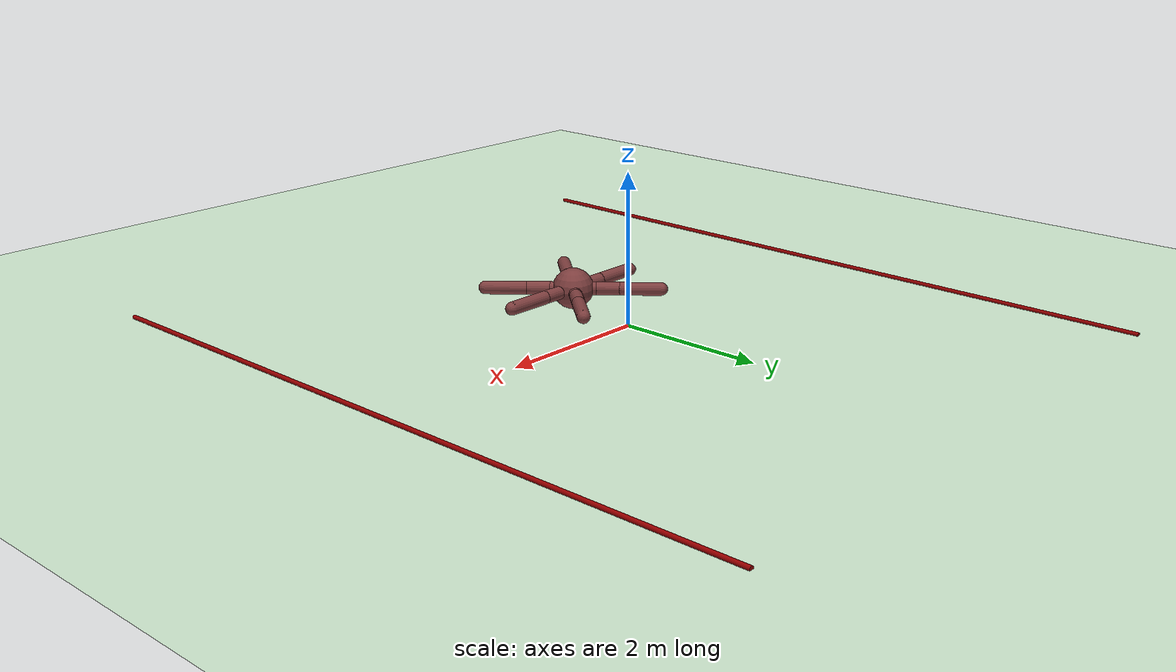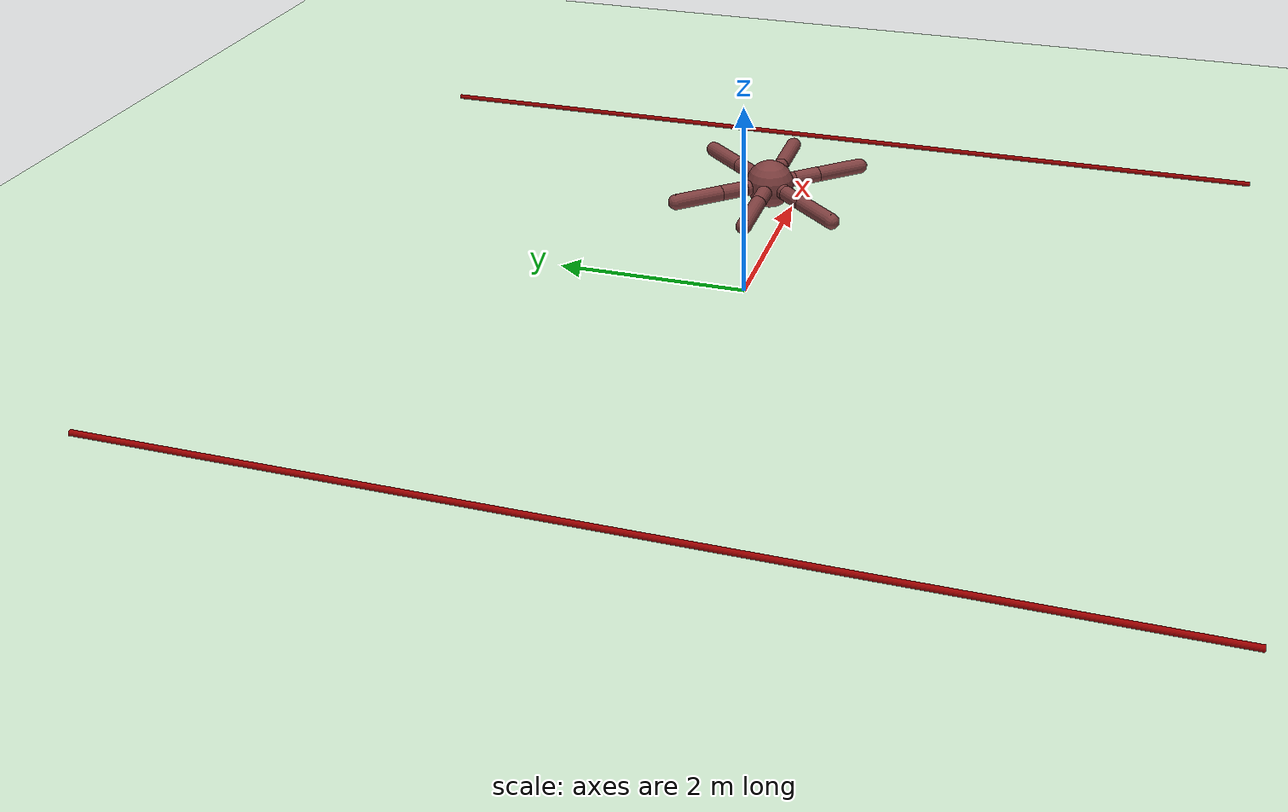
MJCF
<mujoco model="mutiagent_world">
  <compiler angle="degree" coordinate="local" inertiafromgeom="true" />

  <option integrator="RK4" timestep="0.003" solver="PGS" iterations="1000" />

  <default>
    <joint armature="1" damping="1" limited="true" />
  <default class="agent0"><geom conaffinity="1" condim="3" density="5.0" friction="1 0.5 0.5" margin="0.01" rgba="0.5 0.25 0.25 1" material="geom" />
    <motor ctrllimited="true" ctrlrange="-1. 1." />
  </default></default>
  <asset>
    <texture builtin="gradient" height="100" rgb1="1 1 1" rgb2="0 0 0" type="skybox" width="100" />
    <texture builtin="flat" height="1278" mark="cross" markrgb="1 1 1" name="texgeom" random="0.01" rgb1="0.8 0.6 0.4" rgb2="0.8 0.6 0.4" type="cube" width="127" />
    <texture builtin="checker" height="100" name="texplane" rgb1=".1 .1 .1" rgb2=".3 .3 0.3" type="2d" width="100" />
    <material name="MatPlane" reflectance="0.5" shininess="1" specular="1" texrepeat="60 60" texture="texplane" />
    <material name="geom" texture="texgeom" texuniform="true" />
  </asset>
  <worldbody>
    <light cutoff="100" diffuse="1 1 1" dir="-0 0 -1.3" directional="true" exponent="1" pos="0 0 1.3" specular=".1 .1 .1" />
    <geom contype="1" conaffinity="1" friction="1 .1 .1" condim="3" material="MatPlane" name="floor" pos="0 0 0" rgba="0.8 0.9 0.8 1" size="20 20 0.125" type="plane" />
    <geom fromto="4 -5 0  4 +5 0" name="rightgoal" rgba="0.6 0.0 0.0 1" size=".03" type="cylinder" />
    <geom fromto="-4 -5 0  -4 +5 0" name="leftgoal" rgba="0.6 0.0 0.0 1" size=".03" type="cylinder" />
  <body name="agent0/torso" pos="1 0 0.75">
    <geom name="agent0/torso_geom" pos="0 0 0" size="0.25" type="sphere" class="agent0" />
    <joint armature="0" damping="0" limited="false" margin="0.01" name="agent0/root" pos="0 0 0" type="free" />

    <body name="agent0/back_left_leg" pos="0 0 0">
      <geom fromto="0 0 0 0.18 0.215 0" name="agent0/aux_1_geom" size="0.08" type="capsule" class="agent0" />
      <body name="agent0/aux_11" pos="0.18 0.215 0">
        <joint axis="0 0 1" name="agent0/hip_1" pos="0 0 0" range="-30 30" type="hinge" />
        <geom fromto="0 0 0 0.18 0.215 0" name="agent0/back_left_leg_geom" size="0.08" type="capsule" class="agent0" />
        <body name="agent0/aux_12" pos="0.18 0.215 0">
          <joint axis="-1 1 0" name="agent0/ankle_1" pos="0 0 0" range="30 70" type="hinge" />
          <geom fromto="0 0 0 0.324 0.387 0" name="agent0/back_left_ankle_geom" size="0.08" type="capsule" class="agent0" />
        </body>
      </body>
    </body>

    <body name="agent0/back_right_leg" pos="0 0 0">
      <geom fromto="0 0 0 -0.18 0.215 0" name="agent0/aux_2_geom" size="0.08" type="capsule" class="agent0" />
      <body name="agent0/aux_21" pos="-0.18 0.215 0">
        <joint axis="0 0 1" name="agent0/hip_2" pos="0 0 0" range="-30 30" type="hinge" />
        <geom fromto="0 0 0 -0.18 0.215 0" name="agent0/back_right_leg_geom" size="0.08" type="capsule" class="agent0" />
        <body name="agent0/aux_22" pos="-0.18 0.215 0">
          <joint axis="1 1 0" name="agent0/ankle_2" pos="0 0 0" range="-70 -30" type="hinge" />
          <geom fromto="0 0 0 -0.324 0.387 0" name="agent0/back_right_ankle_geom" size="0.08" type="capsule" class="agent0" />
        </body>
      </body>
    </body>

    <body name="agent0/middle_right_leg" pos="0 0 0">
      <geom fromto="0 0 0 -0.2 0 0" name="agent0/aux_3_geom" size="0.08" type="capsule" class="agent0" />
      <body name="agent0/aux_31" pos="-0.2 0 0">
        <joint axis="0 0 1" name="agent0/hip_3" pos="0 0 0" range="-30 30" type="hinge" />
        <geom fromto="0 0 0 -0.275 0 0" name="agent0/middle_right_leg_geom" size="0.08" type="capsule" class="agent0" />
        <body name="agent0/aux_32" pos="-0.275 0 0">
          <joint axis="0 1 0" name="agent0/ankle_3" pos="0 0 0" range="-70 -30" type="hinge" />
          <geom fromto="0 0 0 -0.55 0 0" name="agent0/middle_right_ankle_geom" size="0.08" type="capsule" class="agent0" />
        </body>
      </body>
    </body>

    <body name="agent0/middle_left_leg" pos="0 0 0">
      <geom fromto="0 0 0 0.2 0 0" name="agent0/aux_4_geom" size="0.08" type="capsule" class="agent0" />
      <body name="agent0/aux_41" pos="0.2 0 0">
        <joint axis="0 0 1" name="agent0/hip_4" pos="0 0 0" range="-30 30" type="hinge" />
        <geom fromto="0 0 0 0.275 0 0" name="agent0/middle_left_leg_geom" size="0.08" type="capsule" class="agent0" />
        <body name="agent0/aux_42" pos="0.275 0 0">
          <joint axis="0 1 0" name="agent0/ankle_4" pos="0 0 0" range="30 70" type="hinge" />
          <geom fromto="0 0 0 0.55 0 0" name="agent0/middle_left_ankle_geom" size="0.08" type="capsule" class="agent0" />
        </body>
      </body>
    </body>

    <body name="agent0/front_right_leg" pos="0 0 0">
      <geom fromto="0 0 0 -0.18 -0.215 0" name="agent0/aux_5_geom" size="0.08" type="capsule" class="agent0" />
      <body name="agent0/aux_51" pos="-0.18 -0.215 0">
        <joint axis="0 0 1" name="agent0/hip_5" pos="0 0 0" range="-30 30" type="hinge" />
        <geom fromto="0 0 0 -0.18 -0.215 0" name="agent0/front_right_leg_geom" size="0.08" type="capsule" class="agent0" />
        <body name="agent0/aux_52" pos="-0.18 -0.215 0">
          <joint axis="-1 1 0" name="agent0/ankle_5" pos="0 0 0" range="-70 -30" type="hinge" />
          <geom fromto="0 0 0 -0.324 -0.387 0" name="agent0/front_right_ankle_geom" size="0.08" type="capsule" class="agent0" />
        </body>
      </body>
    </body>

    <body name="agent0/front_left_leg" pos="0 0 0">
      <geom fromto="0 0 0 0.18 -0.215 0" name="agent0/aux_6_geom" size="0.08" type="capsule" class="agent0" />
      <body name="agent0/aux_61" pos="0.18 -0.215 0">
        <joint axis="0 0 1" name="agent0/hip_6" pos="0 0 0" range="-30 30" type="hinge" />
        <geom fromto="0 0 0 0.18 -0.215 0" name="agent0/front_left_leg_geom" size="0.08" type="capsule" class="agent0" />
        <body name="agent0/aux_62" pos="0.18 -0.215 0">
          <joint axis="1 1 0" name="agent0/ankle_6" pos="0 0 0" range="30 70" type="hinge" />
          <geom fromto="0 0 0 0.324 -0.387 0" name="agent0/front_left_ankle_geom" size="0.08" type="capsule" class="agent0" />
        </body>
      </body>
    </body>
  </body>
  </worldbody>
<actuator>
    <motor ctrllimited="true" ctrlrange="-1.0 1.0" joint="agent0/hip_1" gear="150" class="agent0" />
    <motor ctrllimited="true" ctrlrange="-1.0 1.0" joint="agent0/ankle_1" gear="150" class="agent0" />
    <motor ctrllimited="true" ctrlrange="-1.0 1.0" joint="agent0/hip_2" gear="150" class="agent0" />
    <motor ctrllimited="true" ctrlrange="-1.0 1.0" joint="agent0/ankle_2" gear="150" class="agent0" />
    <motor ctrllimited="true" ctrlrange="-1.0 1.0" joint="agent0/hip_3" gear="150" class="agent0" />
    <motor ctrllimited="true" ctrlrange="-1.0 1.0" joint="agent0/ankle_3" gear="150" class="agent0" />
    <motor ctrllimited="true" ctrlrange="-1.0 1.0" joint="agent0/hip_4" gear="150" class="agent0" />
    <motor ctrllimited="true" ctrlrange="-1.0 1.0" joint="agent0/ankle_4" gear="150" class="agent0" />
    <motor ctrllimited="true" ctrlrange="-1.0 1.0" joint="agent0/hip_5" gear="150" class="agent0" />
    <motor ctrllimited="true" ctrlrange="-1.0 1.0" joint="agent0/ankle_5" gear="150" class="agent0" />
    <motor ctrllimited="true" ctrlrange="-1.0 1.0" joint="agent0/hip_6" gear="150" class="agent0" />
    <motor ctrllimited="true" ctrlrange="-1.0 1.0" joint="agent0/ankle_6" gear="150" class="agent0" />
  </actuator>
  </mujoco>
